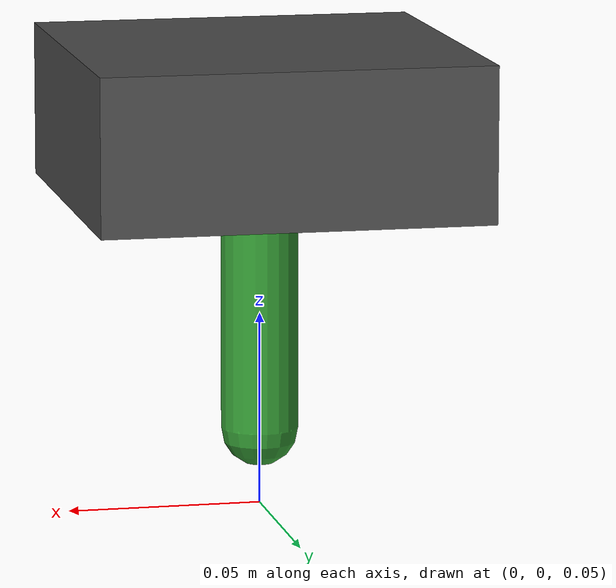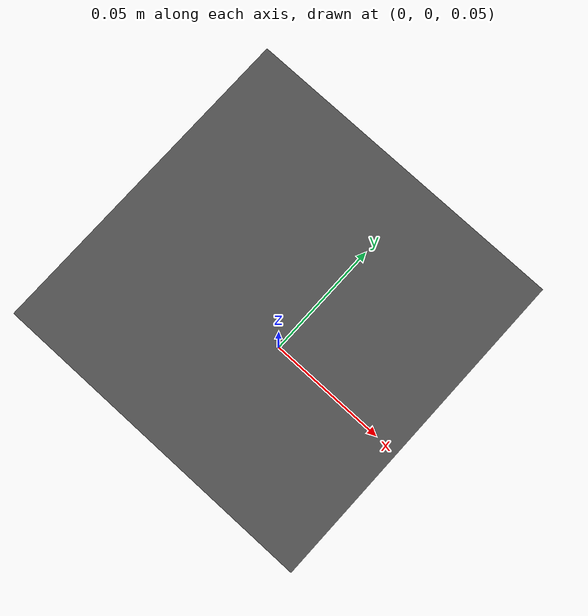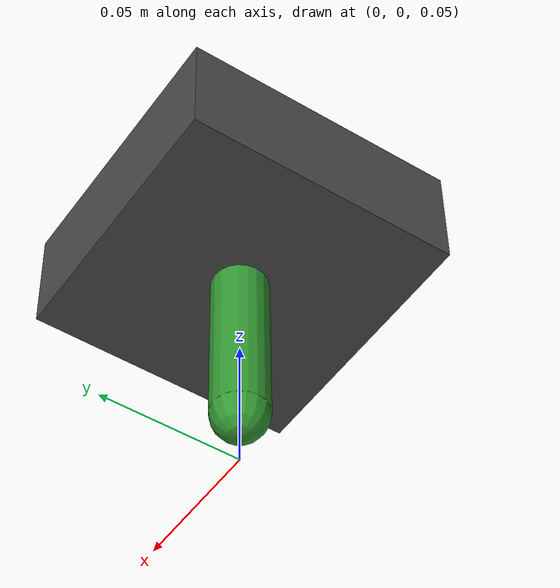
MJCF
<mujoco model="legged_robot">
  <option timestep="0.002" gravity="0 0 -9.81"/>
  <worldbody>
    <body name="base" pos="0 0 0.15">
      <geom type="box" size="0.05 0.05 0.02" rgba="0.3 0.3 0.3 1"/>

      <body name="leg" pos="0 0 0">
        <joint name="hip" type="hinge" axis="0 1 0" range="-30 30"/>
        <geom type="capsule" fromto="0 0 0 0 0 -0.08" size="0.01" rgba="0.2 0.6 0.2 1"/>
      </body>

    </body>
  </worldbody>
</mujoco>
